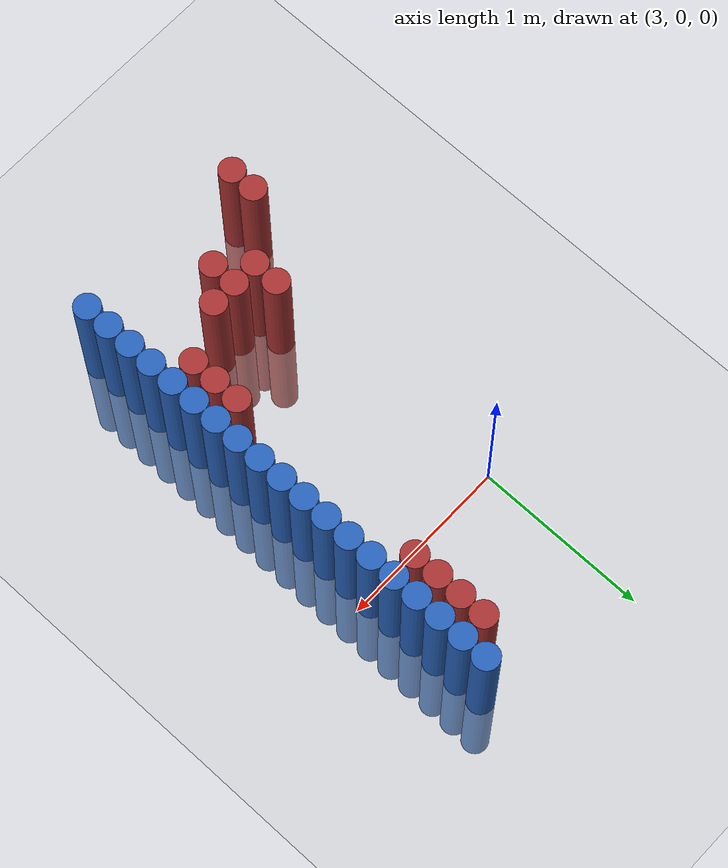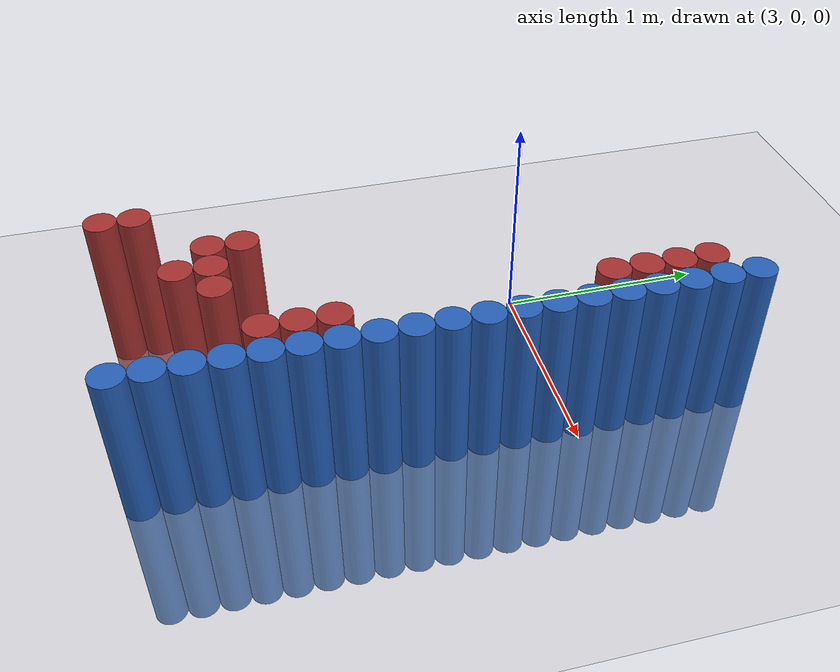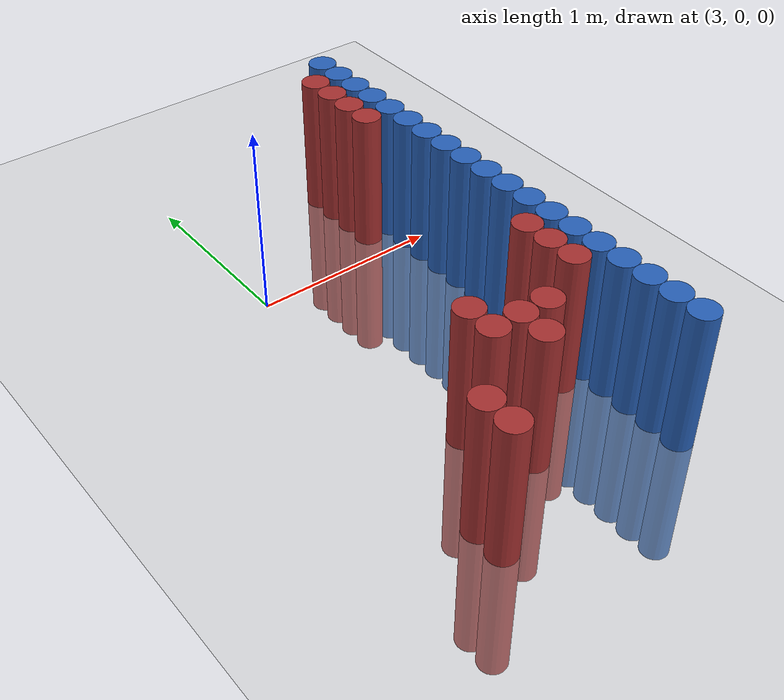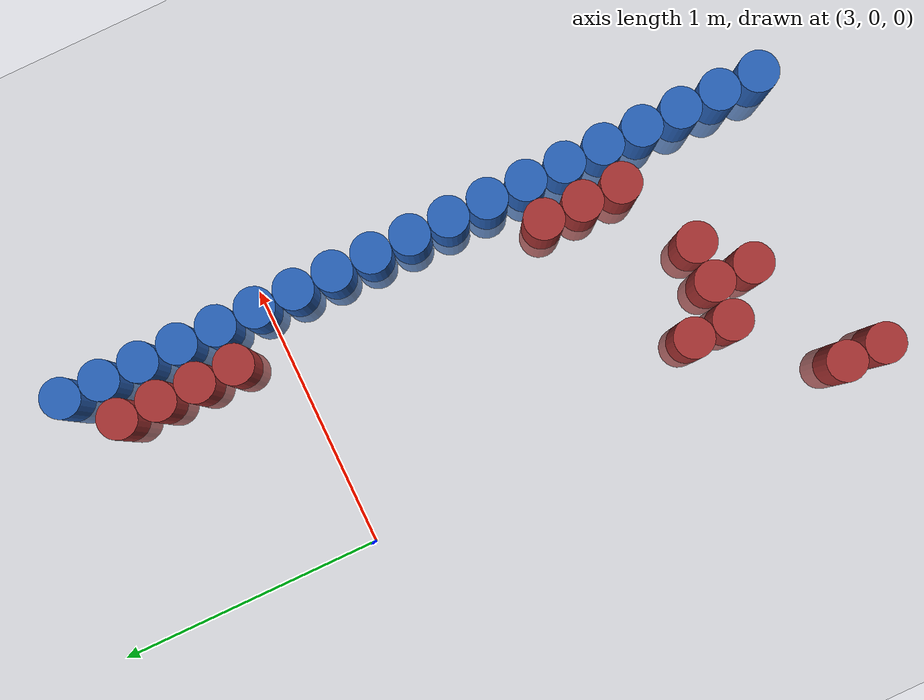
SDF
<sdf version="1.6">
 <world name="default">
  <model name="ground_plane">
   <static>1</static>
   <link name="link">
    <collision name="collision">
     <geometry><plane><normal>0 0 1</normal><size>100 100</size></plane></geometry>
     <surface><friction><ode><mu>100</mu><mu2>50</mu2></ode></friction></surface>
    </collision>
    <visual name="visual">
     <cast_shadows>0</cast_shadows>
     <geometry><plane><normal>0 0 1</normal><size>100 100</size></plane></geometry>
     <material>
      <script><uri>file://media/materials/scripts/gazebo.material</uri><name>Gazebo/Grey</name></script>
     </material>
    </visual>
   </link>
  </model>
  <model name="unit_cylinder_88">
   <static>1</static>
   <pose>3.925000 -1.925000 0.000000 0.000000 0.000000 0.000000</pose>
   <link name="link">
    <inertial>
     <mass>1</mass>
     <inertia><ixx>0.145833</ixx><ixy>0</ixy><ixz>0</ixz><iyy>0.145833</iyy><iyz>0</iyz><izz>0.125</izz></inertia>
    </inertial>
    <collision name="collision">
     <geometry><cylinder><radius>0.075000</radius><length>1.5</length></cylinder></geometry>
    </collision>
    <visual name="visual">
     <geometry><cylinder><radius>0.075000</radius><length>1.5</length></cylinder></geometry>
     <material>
      <ambient>0.152000 0.379000 0.720000 1</ambient>
      <diffuse>0.152000 0.379000 0.720000 1</diffuse>
     </material>
     <material>
      <script><name>Gazebo/Grey</name><uri>file://media/materials/scripts/gazebo.material</uri></script>
     </material>
    </visual>
   </link>
  </model>
  <model name="unit_cylinder_90">
   <static>1</static>
   <pose>3.925000 -1.775000 0.000000 0.000000 0.000000 0.000000</pose>
   <link name="link">
    <inertial>
     <mass>1</mass>
     <inertia><ixx>0.145833</ixx><ixy>0</ixy><ixz>0</ixz><iyy>0.145833</iyy><iyz>0</iyz><izz>0.125</izz></inertia>
    </inertial>
    <collision name="collision">
     <geometry><cylinder><radius>0.075000</radius><length>1.5</length></cylinder></geometry>
    </collision>
    <visual name="visual">
     <geometry><cylinder><radius>0.075000</radius><length>1.5</length></cylinder></geometry>
     <material>
      <ambient>0.152000 0.379000 0.720000 1</ambient>
      <diffuse>0.152000 0.379000 0.720000 1</diffuse>
     </material>
     <material>
      <script><name>Gazebo/Grey</name><uri>file://media/materials/scripts/gazebo.material</uri></script>
     </material>
    </visual>
   </link>
  </model>
  <model name="unit_cylinder_92">
   <static>1</static>
   <pose>3.925000 -1.625000 0.000000 0.000000 0.000000 0.000000</pose>
   <link name="link">
    <inertial>
     <mass>1</mass>
     <inertia><ixx>0.145833</ixx><ixy>0</ixy><ixz>0</ixz><iyy>0.145833</iyy><iyz>0</iyz><izz>0.125</izz></inertia>
    </inertial>
    <collision name="collision">
     <geometry><cylinder><radius>0.075000</radius><length>1.5</length></cylinder></geometry>
    </collision>
    <visual name="visual">
     <geometry><cylinder><radius>0.075000</radius><length>1.5</length></cylinder></geometry>
     <material>
      <ambient>0.152000 0.379000 0.720000 1</ambient>
      <diffuse>0.152000 0.379000 0.720000 1</diffuse>
     </material>
     <material>
      <script><name>Gazebo/Grey</name><uri>file://media/materials/scripts/gazebo.material</uri></script>
     </material>
    </visual>
   </link>
  </model>
  <model name="unit_cylinder_94">
   <static>1</static>
   <pose>3.925000 -1.475000 0.000000 0.000000 0.000000 0.000000</pose>
   <link name="link">
    <inertial>
     <mass>1</mass>
     <inertia><ixx>0.145833</ixx><ixy>0</ixy><ixz>0</ixz><iyy>0.145833</iyy><iyz>0</iyz><izz>0.125</izz></inertia>
    </inertial>
    <collision name="collision">
     <geometry><cylinder><radius>0.075000</radius><length>1.5</length></cylinder></geometry>
    </collision>
    <visual name="visual">
     <geometry><cylinder><radius>0.075000</radius><length>1.5</length></cylinder></geometry>
     <material>
      <ambient>0.152000 0.379000 0.720000 1</ambient>
      <diffuse>0.152000 0.379000 0.720000 1</diffuse>
     </material>
     <material>
      <script><name>Gazebo/Grey</name><uri>file://media/materials/scripts/gazebo.material</uri></script>
     </material>
    </visual>
   </link>
  </model>
  <model name="unit_cylinder_96">
   <static>1</static>
   <pose>3.925000 -1.325000 0.000000 0.000000 0.000000 0.000000</pose>
   <link name="link">
    <inertial>
     <mass>1</mass>
     <inertia><ixx>0.145833</ixx><ixy>0</ixy><ixz>0</ixz><iyy>0.145833</iyy><iyz>0</iyz><izz>0.125</izz></inertia>
    </inertial>
    <collision name="collision">
     <geometry><cylinder><radius>0.075000</radius><length>1.5</length></cylinder></geometry>
    </collision>
    <visual name="visual">
     <geometry><cylinder><radius>0.075000</radius><length>1.5</length></cylinder></geometry>
     <material>
      <ambient>0.152000 0.379000 0.720000 1</ambient>
      <diffuse>0.152000 0.379000 0.720000 1</diffuse>
     </material>
     <material>
      <script><name>Gazebo/Grey</name><uri>file://media/materials/scripts/gazebo.material</uri></script>
     </material>
    </visual>
   </link>
  </model>
  <model name="unit_cylinder_98">
   <static>1</static>
   <pose>3.925000 -1.175000 0.000000 0.000000 0.000000 0.000000</pose>
   <link name="link">
    <inertial>
     <mass>1</mass>
     <inertia><ixx>0.145833</ixx><ixy>0</ixy><ixz>0</ixz><iyy>0.145833</iyy><iyz>0</iyz><izz>0.125</izz></inertia>
    </inertial>
    <collision name="collision">
     <geometry><cylinder><radius>0.075000</radius><length>1.5</length></cylinder></geometry>
    </collision>
    <visual name="visual">
     <geometry><cylinder><radius>0.075000</radius><length>1.5</length></cylinder></geometry>
     <material>
      <ambient>0.152000 0.379000 0.720000 1</ambient>
      <diffuse>0.152000 0.379000 0.720000 1</diffuse>
     </material>
     <material>
      <script><name>Gazebo/Grey</name><uri>file://media/materials/scripts/gazebo.material</uri></script>
     </material>
    </visual>
   </link>
  </model>
  <model name="unit_cylinder_100">
   <static>1</static>
   <pose>3.925000 -1.025000 0.000000 0.000000 0.000000 0.000000</pose>
   <link name="link">
    <inertial>
     <mass>1</mass>
     <inertia><ixx>0.145833</ixx><ixy>0</ixy><ixz>0</ixz><iyy>0.145833</iyy><iyz>0</iyz><izz>0.125</izz></inertia>
    </inertial>
    <collision name="collision">
     <geometry><cylinder><radius>0.075000</radius><length>1.5</length></cylinder></geometry>
    </collision>
    <visual name="visual">
     <geometry><cylinder><radius>0.075000</radius><length>1.5</length></cylinder></geometry>
     <material>
      <ambient>0.152000 0.379000 0.720000 1</ambient>
      <diffuse>0.152000 0.379000 0.720000 1</diffuse>
     </material>
     <material>
      <script><name>Gazebo/Grey</name><uri>file://media/materials/scripts/gazebo.material</uri></script>
     </material>
    </visual>
   </link>
  </model>
  <model name="unit_cylinder_102">
   <static>1</static>
   <pose>3.925000 -0.875000 0.000000 0.000000 0.000000 0.000000</pose>
   <link name="link">
    <inertial>
     <mass>1</mass>
     <inertia><ixx>0.145833</ixx><ixy>0</ixy><ixz>0</ixz><iyy>0.145833</iyy><iyz>0</iyz><izz>0.125</izz></inertia>
    </inertial>
    <collision name="collision">
     <geometry><cylinder><radius>0.075000</radius><length>1.5</length></cylinder></geometry>
    </collision>
    <visual name="visual">
     <geometry><cylinder><radius>0.075000</radius><length>1.5</length></cylinder></geometry>
     <material>
      <ambient>0.152000 0.379000 0.720000 1</ambient>
      <diffuse>0.152000 0.379000 0.720000 1</diffuse>
     </material>
     <material>
      <script><name>Gazebo/Grey</name><uri>file://media/materials/scripts/gazebo.material</uri></script>
     </material>
    </visual>
   </link>
  </model>
  <model name="unit_cylinder_104">
   <static>1</static>
   <pose>3.925000 -0.725000 0.000000 0.000000 0.000000 0.000000</pose>
   <link name="link">
    <inertial>
     <mass>1</mass>
     <inertia><ixx>0.145833</ixx><ixy>0</ixy><ixz>0</ixz><iyy>0.145833</iyy><iyz>0</iyz><izz>0.125</izz></inertia>
    </inertial>
    <collision name="collision">
     <geometry><cylinder><radius>0.075000</radius><length>1.5</length></cylinder></geometry>
    </collision>
    <visual name="visual">
     <geometry><cylinder><radius>0.075000</radius><length>1.5</length></cylinder></geometry>
     <material>
      <ambient>0.152000 0.379000 0.720000 1</ambient>
      <diffuse>0.152000 0.379000 0.720000 1</diffuse>
     </material>
     <material>
      <script><name>Gazebo/Grey</name><uri>file://media/materials/scripts/gazebo.material</uri></script>
     </material>
    </visual>
   </link>
  </model>
  <model name="unit_cylinder_106">
   <static>1</static>
   <pose>3.925000 -0.575000 0.000000 0.000000 0.000000 0.000000</pose>
   <link name="link">
    <inertial>
     <mass>1</mass>
     <inertia><ixx>0.145833</ixx><ixy>0</ixy><ixz>0</ixz><iyy>0.145833</iyy><iyz>0</iyz><izz>0.125</izz></inertia>
    </inertial>
    <collision name="collision">
     <geometry><cylinder><radius>0.075000</radius><length>1.5</length></cylinder></geometry>
    </collision>
    <visual name="visual">
     <geometry><cylinder><radius>0.075000</radius><length>1.5</length></cylinder></geometry>
     <material>
      <ambient>0.152000 0.379000 0.720000 1</ambient>
      <diffuse>0.152000 0.379000 0.720000 1</diffuse>
     </material>
     <material>
      <script><name>Gazebo/Grey</name><uri>file://media/materials/scripts/gazebo.material</uri></script>
     </material>
    </visual>
   </link>
  </model>
  <model name="unit_cylinder_108">
   <static>1</static>
   <pose>3.925000 -0.425000 0.000000 0.000000 0.000000 0.000000</pose>
   <link name="link">
    <inertial>
     <mass>1</mass>
     <inertia><ixx>0.145833</ixx><ixy>0</ixy><ixz>0</ixz><iyy>0.145833</iyy><iyz>0</iyz><izz>0.125</izz></inertia>
    </inertial>
    <collision name="collision">
     <geometry><cylinder><radius>0.075000</radius><length>1.5</length></cylinder></geometry>
    </collision>
    <visual name="visual">
     <geometry><cylinder><radius>0.075000</radius><length>1.5</length></cylinder></geometry>
     <material>
      <ambient>0.152000 0.379000 0.720000 1</ambient>
      <diffuse>0.152000 0.379000 0.720000 1</diffuse>
     </material>
     <material>
      <script><name>Gazebo/Grey</name><uri>file://media/materials/scripts/gazebo.material</uri></script>
     </material>
    </visual>
   </link>
  </model>
  <model name="unit_cylinder_110">
   <static>1</static>
   <pose>3.925000 -0.275000 0.000000 0.000000 0.000000 0.000000</pose>
   <link name="link">
    <inertial>
     <mass>1</mass>
     <inertia><ixx>0.145833</ixx><ixy>0</ixy><ixz>0</ixz><iyy>0.145833</iyy><iyz>0</iyz><izz>0.125</izz></inertia>
    </inertial>
    <collision name="collision">
     <geometry><cylinder><radius>0.075000</radius><length>1.5</length></cylinder></geometry>
    </collision>
    <visual name="visual">
     <geometry><cylinder><radius>0.075000</radius><length>1.5</length></cylinder></geometry>
     <material>
      <ambient>0.152000 0.379000 0.720000 1</ambient>
      <diffuse>0.152000 0.379000 0.720000 1</diffuse>
     </material>
     <material>
      <script><name>Gazebo/Grey</name><uri>file://media/materials/scripts/gazebo.material</uri></script>
     </material>
    </visual>
   </link>
  </model>
  <model name="unit_cylinder_112">
   <static>1</static>
   <pose>3.925000 -0.125000 0.000000 0.000000 0.000000 0.000000</pose>
   <link name="link">
    <inertial>
     <mass>1</mass>
     <inertia><ixx>0.145833</ixx><ixy>0</ixy><ixz>0</ixz><iyy>0.145833</iyy><iyz>0</iyz><izz>0.125</izz></inertia>
    </inertial>
    <collision name="collision">
     <geometry><cylinder><radius>0.075000</radius><length>1.5</length></cylinder></geometry>
    </collision>
    <visual name="visual">
     <geometry><cylinder><radius>0.075000</radius><length>1.5</length></cylinder></geometry>
     <material>
      <ambient>0.152000 0.379000 0.720000 1</ambient>
      <diffuse>0.152000 0.379000 0.720000 1</diffuse>
     </material>
     <material>
      <script><name>Gazebo/Grey</name><uri>file://media/materials/scripts/gazebo.material</uri></script>
     </material>
    </visual>
   </link>
  </model>
  <model name="unit_cylinder_114">
   <static>1</static>
   <pose>3.925000 0.025000 0.000000 0.000000 0.000000 0.000000</pose>
   <link name="link">
    <inertial>
     <mass>1</mass>
     <inertia><ixx>0.145833</ixx><ixy>0</ixy><ixz>0</ixz><iyy>0.145833</iyy><iyz>0</iyz><izz>0.125</izz></inertia>
    </inertial>
    <collision name="collision">
     <geometry><cylinder><radius>0.075000</radius><length>1.5</length></cylinder></geometry>
    </collision>
    <visual name="visual">
     <geometry><cylinder><radius>0.075000</radius><length>1.5</length></cylinder></geometry>
     <material>
      <ambient>0.152000 0.379000 0.720000 1</ambient>
      <diffuse>0.152000 0.379000 0.720000 1</diffuse>
     </material>
     <material>
      <script><name>Gazebo/Grey</name><uri>file://media/materials/scripts/gazebo.material</uri></script>
     </material>
    </visual>
   </link>
  </model>
  <model name="unit_cylinder_116">
   <static>1</static>
   <pose>3.925000 0.175000 0.000000 0.000000 0.000000 0.000000</pose>
   <link name="link">
    <inertial>
     <mass>1</mass>
     <inertia><ixx>0.145833</ixx><ixy>0</ixy><ixz>0</ixz><iyy>0.145833</iyy><iyz>0</iyz><izz>0.125</izz></inertia>
    </inertial>
    <collision name="collision">
     <geometry><cylinder><radius>0.075000</radius><length>1.5</length></cylinder></geometry>
    </collision>
    <visual name="visual">
     <geometry><cylinder><radius>0.075000</radius><length>1.5</length></cylinder></geometry>
     <material>
      <ambient>0.152000 0.379000 0.720000 1</ambient>
      <diffuse>0.152000 0.379000 0.720000 1</diffuse>
     </material>
     <material>
      <script><name>Gazebo/Grey</name><uri>file://media/materials/scripts/gazebo.material</uri></script>
     </material>
    </visual>
   </link>
  </model>
  <model name="unit_cylinder_118">
   <static>1</static>
   <pose>3.925000 0.325000 0.000000 0.000000 0.000000 0.000000</pose>
   <link name="link">
    <inertial>
     <mass>1</mass>
     <inertia><ixx>0.145833</ixx><ixy>0</ixy><ixz>0</ixz><iyy>0.145833</iyy><iyz>0</iyz><izz>0.125</izz></inertia>
    </inertial>
    <collision name="collision">
     <geometry><cylinder><radius>0.075000</radius><length>1.5</length></cylinder></geometry>
    </collision>
    <visual name="visual">
     <geometry><cylinder><radius>0.075000</radius><length>1.5</length></cylinder></geometry>
     <material>
      <ambient>0.152000 0.379000 0.720000 1</ambient>
      <diffuse>0.152000 0.379000 0.720000 1</diffuse>
     </material>
     <material>
      <script><name>Gazebo/Grey</name><uri>file://media/materials/scripts/gazebo.material</uri></script>
     </material>
    </visual>
   </link>
  </model>
  <model name="unit_cylinder_120">
   <static>1</static>
   <pose>3.925000 0.475000 0.000000 0.000000 0.000000 0.000000</pose>
   <link name="link">
    <inertial>
     <mass>1</mass>
     <inertia><ixx>0.145833</ixx><ixy>0</ixy><ixz>0</ixz><iyy>0.145833</iyy><iyz>0</iyz><izz>0.125</izz></inertia>
    </inertial>
    <collision name="collision">
     <geometry><cylinder><radius>0.075000</radius><length>1.5</length></cylinder></geometry>
    </collision>
    <visual name="visual">
     <geometry><cylinder><radius>0.075000</radius><length>1.5</length></cylinder></geometry>
     <material>
      <ambient>0.152000 0.379000 0.720000 1</ambient>
      <diffuse>0.152000 0.379000 0.720000 1</diffuse>
     </material>
     <material>
      <script><name>Gazebo/Grey</name><uri>file://media/materials/scripts/gazebo.material</uri></script>
     </material>
    </visual>
   </link>
  </model>
  <model name="unit_cylinder_122">
   <static>1</static>
   <pose>3.925000 0.625000 0.000000 0.000000 0.000000 0.000000</pose>
   <link name="link">
    <inertial>
     <mass>1</mass>
     <inertia><ixx>0.145833</ixx><ixy>0</ixy><ixz>0</ixz><iyy>0.145833</iyy><iyz>0</iyz><izz>0.125</izz></inertia>
    </inertial>
    <collision name="collision">
     <geometry><cylinder><radius>0.075000</radius><length>1.5</length></cylinder></geometry>
    </collision>
    <visual name="visual">
     <geometry><cylinder><radius>0.075000</radius><length>1.5</length></cylinder></geometry>
     <material>
      <ambient>0.152000 0.379000 0.720000 1</ambient>
      <diffuse>0.152000 0.379000 0.720000 1</diffuse>
     </material>
     <material>
      <script><name>Gazebo/Grey</name><uri>file://media/materials/scripts/gazebo.material</uri></script>
     </material>
    </visual>
   </link>
  </model>
  <model name="unit_cylinder_124">
   <static>1</static>
   <pose>3.925000 0.775000 0.000000 0.000000 0.000000 0.000000</pose>
   <link name="link">
    <inertial>
     <mass>1</mass>
     <inertia><ixx>0.145833</ixx><ixy>0</ixy><ixz>0</ixz><iyy>0.145833</iyy><iyz>0</iyz><izz>0.125</izz></inertia>
    </inertial>
    <collision name="collision">
     <geometry><cylinder><radius>0.075000</radius><length>1.5</length></cylinder></geometry>
    </collision>
    <visual name="visual">
     <geometry><cylinder><radius>0.075000</radius><length>1.5</length></cylinder></geometry>
     <material>
      <ambient>0.152000 0.379000 0.720000 1</ambient>
      <diffuse>0.152000 0.379000 0.720000 1</diffuse>
     </material>
     <material>
      <script><name>Gazebo/Grey</name><uri>file://media/materials/scripts/gazebo.material</uri></script>
     </material>
    </visual>
   </link>
  </model>
  <model name="unit_cylinder_501">
   <static>1</static>
   <pose>2.875000 -1.925000 0.000000 0.000000 0.000000 0.000000</pose>
   <link name="link">
    <inertial>
     <mass>1</mass>
     <inertia><ixx>0.145833</ixx><ixy>0</ixy><ixz>0</ixz><iyy>0.145833</iyy><iyz>0</iyz><izz>0.125</izz></inertia>
    </inertial>
    <collision name="collision">
     <geometry><cylinder><radius>0.075000</radius><length>1.5</length></cylinder></geometry>
    </collision>
    <visual name="visual">
     <geometry><cylinder><radius>0.075000</radius><length>1.5</length></cylinder></geometry>
     <material>
      <ambient>0.648000 0.192000 0.192000 1</ambient>
      <diffuse>0.648000 0.192000 0.192000 1</diffuse>
     </material>
     <material>
      <script><name>Gazebo/Grey</name><uri>file://media/materials/scripts/gazebo.material</uri></script>
     </material>
    </visual>
   </link>
  </model>
  <model name="unit_cylinder_502">
   <static>1</static>
   <pose>2.875000 -1.775000 0.000000 0.000000 0.000000 0.000000</pose>
   <link name="link">
    <inertial>
     <mass>1</mass>
     <inertia><ixx>0.145833</ixx><ixy>0</ixy><ixz>0</ixz><iyy>0.145833</iyy><iyz>0</iyz><izz>0.125</izz></inertia>
    </inertial>
    <collision name="collision">
     <geometry><cylinder><radius>0.075000</radius><length>1.5</length></cylinder></geometry>
    </collision>
    <visual name="visual">
     <geometry><cylinder><radius>0.075000</radius><length>1.5</length></cylinder></geometry>
     <material>
      <ambient>0.648000 0.192000 0.192000 1</ambient>
      <diffuse>0.648000 0.192000 0.192000 1</diffuse>
     </material>
     <material>
      <script><name>Gazebo/Grey</name><uri>file://media/materials/scripts/gazebo.material</uri></script>
     </material>
    </visual>
   </link>
  </model>
  <model name="unit_cylinder_505">
   <static>1</static>
   <pose>3.175000 -1.475000 0.000000 0.000000 0.000000 0.000000</pose>
   <link name="link">
    <inertial>
     <mass>1</mass>
     <inertia><ixx>0.145833</ixx><ixy>0</ixy><ixz>0</ixz><iyy>0.145833</iyy><iyz>0</iyz><izz>0.125</izz></inertia>
    </inertial>
    <collision name="collision">
     <geometry><cylinder><radius>0.075000</radius><length>1.5</length></cylinder></geometry>
    </collision>
    <visual name="visual">
     <geometry><cylinder><radius>0.075000</radius><length>1.5</length></cylinder></geometry>
     <material>
      <ambient>0.648000 0.192000 0.192000 1</ambient>
      <diffuse>0.648000 0.192000 0.192000 1</diffuse>
     </material>
     <material>
      <script><name>Gazebo/Grey</name><uri>file://media/materials/scripts/gazebo.material</uri></script>
     </material>
    </visual>
   </link>
  </model>
  <model name="unit_cylinder_506">
   <static>1</static>
   <pose>3.175000 -1.325000 0.000000 0.000000 0.000000 0.000000</pose>
   <link name="link">
    <inertial>
     <mass>1</mass>
     <inertia><ixx>0.145833</ixx><ixy>0</ixy><ixz>0</ixz><iyy>0.145833</iyy><iyz>0</iyz><izz>0.125</izz></inertia>
    </inertial>
    <collision name="collision">
     <geometry><cylinder><radius>0.075000</radius><length>1.5</length></cylinder></geometry>
    </collision>
    <visual name="visual">
     <geometry><cylinder><radius>0.075000</radius><length>1.5</length></cylinder></geometry>
     <material>
      <ambient>0.648000 0.192000 0.192000 1</ambient>
      <diffuse>0.648000 0.192000 0.192000 1</diffuse>
     </material>
     <material>
      <script><name>Gazebo/Grey</name><uri>file://media/materials/scripts/gazebo.material</uri></script>
     </material>
    </visual>
   </link>
  </model>
  <model name="unit_cylinder_510">
   <static>1</static>
   <pose>3.325000 -1.625000 0.000000 0.000000 0.000000 0.000000</pose>
   <link name="link">
    <inertial>
     <mass>1</mass>
     <inertia><ixx>0.145833</ixx><ixy>0</ixy><ixz>0</ixz><iyy>0.145833</iyy><iyz>0</iyz><izz>0.125</izz></inertia>
    </inertial>
    <collision name="collision">
     <geometry><cylinder><radius>0.075000</radius><length>1.5</length></cylinder></geometry>
    </collision>
    <visual name="visual">
     <geometry><cylinder><radius>0.075000</radius><length>1.5</length></cylinder></geometry>
     <material>
      <ambient>0.648000 0.192000 0.192000 1</ambient>
      <diffuse>0.648000 0.192000 0.192000 1</diffuse>
     </material>
     <material>
      <script><name>Gazebo/Grey</name><uri>file://media/materials/scripts/gazebo.material</uri></script>
     </material>
    </visual>
   </link>
  </model>
  <model name="unit_cylinder_511">
   <static>1</static>
   <pose>3.325000 -1.475000 0.000000 0.000000 0.000000 0.000000</pose>
   <link name="link">
    <inertial>
     <mass>1</mass>
     <inertia><ixx>0.145833</ixx><ixy>0</ixy><ixz>0</ixz><iyy>0.145833</iyy><iyz>0</iyz><izz>0.125</izz></inertia>
    </inertial>
    <collision name="collision">
     <geometry><cylinder><radius>0.075000</radius><length>1.5</length></cylinder></geometry>
    </collision>
    <visual name="visual">
     <geometry><cylinder><radius>0.075000</radius><length>1.5</length></cylinder></geometry>
     <material>
      <ambient>0.648000 0.192000 0.192000 1</ambient>
      <diffuse>0.648000 0.192000 0.192000 1</diffuse>
     </material>
     <material>
      <script><name>Gazebo/Grey</name><uri>file://media/materials/scripts/gazebo.material</uri></script>
     </material>
    </visual>
   </link>
  </model>
  <model name="unit_cylinder_515">
   <static>1</static>
   <pose>3.475000 -1.475000 0.000000 0.000000 0.000000 0.000000</pose>
   <link name="link">
    <inertial>
     <mass>1</mass>
     <inertia><ixx>0.145833</ixx><ixy>0</ixy><ixz>0</ixz><iyy>0.145833</iyy><iyz>0</iyz><izz>0.125</izz></inertia>
    </inertial>
    <collision name="collision">
     <geometry><cylinder><radius>0.075000</radius><length>1.5</length></cylinder></geometry>
    </collision>
    <visual name="visual">
     <geometry><cylinder><radius>0.075000</radius><length>1.5</length></cylinder></geometry>
     <material>
      <ambient>0.648000 0.192000 0.192000 1</ambient>
      <diffuse>0.648000 0.192000 0.192000 1</diffuse>
     </material>
     <material>
      <script><name>Gazebo/Grey</name><uri>file://media/materials/scripts/gazebo.material</uri></script>
     </material>
    </visual>
   </link>
  </model>
  <model name="unit_cylinder_525">
   <static>1</static>
   <pose>3.775000 -1.325000 0.000000 0.000000 0.000000 0.000000</pose>
   <link name="link">
    <inertial>
     <mass>1</mass>
     <inertia><ixx>0.145833</ixx><ixy>0</ixy><ixz>0</ixz><iyy>0.145833</iyy><iyz>0</iyz><izz>0.125</izz></inertia>
    </inertial>
    <collision name="collision">
     <geometry><cylinder><radius>0.075000</radius><length>1.5</length></cylinder></geometry>
    </collision>
    <visual name="visual">
     <geometry><cylinder><radius>0.075000</radius><length>1.5</length></cylinder></geometry>
     <material>
      <ambient>0.648000 0.192000 0.192000 1</ambient>
      <diffuse>0.648000 0.192000 0.192000 1</diffuse>
     </material>
     <material>
      <script><name>Gazebo/Grey</name><uri>file://media/materials/scripts/gazebo.material</uri></script>
     </material>
    </visual>
   </link>
  </model>
  <model name="unit_cylinder_526">
   <static>1</static>
   <pose>3.775000 -1.175000 0.000000 0.000000 0.000000 0.000000</pose>
   <link name="link">
    <inertial>
     <mass>1</mass>
     <inertia><ixx>0.145833</ixx><ixy>0</ixy><ixz>0</ixz><iyy>0.145833</iyy><iyz>0</iyz><izz>0.125</izz></inertia>
    </inertial>
    <collision name="collision">
     <geometry><cylinder><radius>0.075000</radius><length>1.5</length></cylinder></geometry>
    </collision>
    <visual name="visual">
     <geometry><cylinder><radius>0.075000</radius><length>1.5</length></cylinder></geometry>
     <material>
      <ambient>0.648000 0.192000 0.192000 1</ambient>
      <diffuse>0.648000 0.192000 0.192000 1</diffuse>
     </material>
     <material>
      <script><name>Gazebo/Grey</name><uri>file://media/materials/scripts/gazebo.material</uri></script>
     </material>
    </visual>
   </link>
  </model>
  <model name="unit_cylinder_527">
   <static>1</static>
   <pose>3.775000 -1.025000 0.000000 0.000000 0.000000 0.000000</pose>
   <link name="link">
    <inertial>
     <mass>1</mass>
     <inertia><ixx>0.145833</ixx><ixy>0</ixy><ixz>0</ixz><iyy>0.145833</iyy><iyz>0</iyz><izz>0.125</izz></inertia>
    </inertial>
    <collision name="collision">
     <geometry><cylinder><radius>0.075000</radius><length>1.5</length></cylinder></geometry>
    </collision>
    <visual name="visual">
     <geometry><cylinder><radius>0.075000</radius><length>1.5</length></cylinder></geometry>
     <material>
      <ambient>0.648000 0.192000 0.192000 1</ambient>
      <diffuse>0.648000 0.192000 0.192000 1</diffuse>
     </material>
     <material>
      <script><name>Gazebo/Grey</name><uri>file://media/materials/scripts/gazebo.material</uri></script>
     </material>
    </visual>
   </link>
  </model>
  <model name="unit_cylinder_528">
   <static>1</static>
   <pose>3.775000 0.175000 0.000000 0.000000 0.000000 0.000000</pose>
   <link name="link">
    <inertial>
     <mass>1</mass>
     <inertia><ixx>0.145833</ixx><ixy>0</ixy><ixz>0</ixz><iyy>0.145833</iyy><iyz>0</iyz><izz>0.125</izz></inertia>
    </inertial>
    <collision name="collision">
     <geometry><cylinder><radius>0.075000</radius><length>1.5</length></cylinder></geometry>
    </collision>
    <visual name="visual">
     <geometry><cylinder><radius>0.075000</radius><length>1.5</length></cylinder></geometry>
     <material>
      <ambient>0.648000 0.192000 0.192000 1</ambient>
      <diffuse>0.648000 0.192000 0.192000 1</diffuse>
     </material>
     <material>
      <script><name>Gazebo/Grey</name><uri>file://media/materials/scripts/gazebo.material</uri></script>
     </material>
    </visual>
   </link>
  </model>
  <model name="unit_cylinder_529">
   <static>1</static>
   <pose>3.775000 0.325000 0.000000 0.000000 0.000000 0.000000</pose>
   <link name="link">
    <inertial>
     <mass>1</mass>
     <inertia><ixx>0.145833</ixx><ixy>0</ixy><ixz>0</ixz><iyy>0.145833</iyy><iyz>0</iyz><izz>0.125</izz></inertia>
    </inertial>
    <collision name="collision">
     <geometry><cylinder><radius>0.075000</radius><length>1.5</length></cylinder></geometry>
    </collision>
    <visual name="visual">
     <geometry><cylinder><radius>0.075000</radius><length>1.5</length></cylinder></geometry>
     <material>
      <ambient>0.648000 0.192000 0.192000 1</ambient>
      <diffuse>0.648000 0.192000 0.192000 1</diffuse>
     </material>
     <material>
      <script><name>Gazebo/Grey</name><uri>file://media/materials/scripts/gazebo.material</uri></script>
     </material>
    </visual>
   </link>
  </model>
  <model name="unit_cylinder_530">
   <static>1</static>
   <pose>3.775000 0.475000 0.000000 0.000000 0.000000 0.000000</pose>
   <link name="link">
    <inertial>
     <mass>1</mass>
     <inertia><ixx>0.145833</ixx><ixy>0</ixy><ixz>0</ixz><iyy>0.145833</iyy><iyz>0</iyz><izz>0.125</izz></inertia>
    </inertial>
    <collision name="collision">
     <geometry><cylinder><radius>0.075000</radius><length>1.5</length></cylinder></geometry>
    </collision>
    <visual name="visual">
     <geometry><cylinder><radius>0.075000</radius><length>1.5</length></cylinder></geometry>
     <material>
      <ambient>0.648000 0.192000 0.192000 1</ambient>
      <diffuse>0.648000 0.192000 0.192000 1</diffuse>
     </material>
     <material>
      <script><name>Gazebo/Grey</name><uri>file://media/materials/scripts/gazebo.material</uri></script>
     </material>
    </visual>
   </link>
  </model>
  <model name="unit_cylinder_531">
   <static>1</static>
   <pose>3.775000 0.625000 0.000000 0.000000 0.000000 0.000000</pose>
   <link name="link">
    <inertial>
     <mass>1</mass>
     <inertia><ixx>0.145833</ixx><ixy>0</ixy><ixz>0</ixz><iyy>0.145833</iyy><iyz>0</iyz><izz>0.125</izz></inertia>
    </inertial>
    <collision name="collision">
     <geometry><cylinder><radius>0.075000</radius><length>1.5</length></cylinder></geometry>
    </collision>
    <visual name="visual">
     <geometry><cylinder><radius>0.075000</radius><length>1.5</length></cylinder></geometry>
     <material>
      <ambient>0.648000 0.192000 0.192000 1</ambient>
      <diffuse>0.648000 0.192000 0.192000 1</diffuse>
     </material>
     <material>
      <script><name>Gazebo/Grey</name><uri>file://media/materials/scripts/gazebo.material</uri></script>
     </material>
    </visual>
   </link>
  </model>
  <model name="unit_cylinder_554">
   <static>1</static>
   <pose>3.925000 -1.925000 0.000000 0.000000 0.000000 0.000000</pose>
   <link name="link">
    <inertial>
     <mass>1</mass>
     <inertia><ixx>0.145833</ixx><ixy>0</ixy><ixz>0</ixz><iyy>0.145833</iyy><iyz>0</iyz><izz>0.125</izz></inertia>
    </inertial>
    <collision name="collision">
     <geometry><cylinder><radius>0.075000</radius><length>1.5</length></cylinder></geometry>
    </collision>
    <visual name="visual">
     <geometry><cylinder><radius>0.075000</radius><length>1.5</length></cylinder></geometry>
     <material>
      <ambient>0.152000 0.379000 0.720000 1</ambient>
      <diffuse>0.152000 0.379000 0.720000 1</diffuse>
     </material>
     <material>
      <script><name>Gazebo/Grey</name><uri>file://media/materials/scripts/gazebo.material</uri></script>
     </material>
    </visual>
   </link>
  </model>
  <model name="unit_cylinder_555">
   <static>1</static>
   <pose>3.925000 -1.775000 0.000000 0.000000 0.000000 0.000000</pose>
   <link name="link">
    <inertial>
     <mass>1</mass>
     <inertia><ixx>0.145833</ixx><ixy>0</ixy><ixz>0</ixz><iyy>0.145833</iyy><iyz>0</iyz><izz>0.125</izz></inertia>
    </inertial>
    <collision name="collision">
     <geometry><cylinder><radius>0.075000</radius><length>1.5</length></cylinder></geometry>
    </collision>
    <visual name="visual">
     <geometry><cylinder><radius>0.075000</radius><length>1.5</length></cylinder></geometry>
     <material>
      <ambient>0.152000 0.379000 0.720000 1</ambient>
      <diffuse>0.152000 0.379000 0.720000 1</diffuse>
     </material>
     <material>
      <script><name>Gazebo/Grey</name><uri>file://media/materials/scripts/gazebo.material</uri></script>
     </material>
    </visual>
   </link>
  </model>
  <model name="unit_cylinder_556">
   <static>1</static>
   <pose>3.925000 -1.625000 0.000000 0.000000 0.000000 0.000000</pose>
   <link name="link">
    <inertial>
     <mass>1</mass>
     <inertia><ixx>0.145833</ixx><ixy>0</ixy><ixz>0</ixz><iyy>0.145833</iyy><iyz>0</iyz><izz>0.125</izz></inertia>
    </inertial>
    <collision name="collision">
     <geometry><cylinder><radius>0.075000</radius><length>1.5</length></cylinder></geometry>
    </collision>
    <visual name="visual">
     <geometry><cylinder><radius>0.075000</radius><length>1.5</length></cylinder></geometry>
     <material>
      <ambient>0.152000 0.379000 0.720000 1</ambient>
      <diffuse>0.152000 0.379000 0.720000 1</diffuse>
     </material>
     <material>
      <script><name>Gazebo/Grey</name><uri>file://media/materials/scripts/gazebo.material</uri></script>
     </material>
    </visual>
   </link>
  </model>
  <model name="unit_cylinder_557">
   <static>1</static>
   <pose>3.925000 -1.475000 0.000000 0.000000 0.000000 0.000000</pose>
   <link name="link">
    <inertial>
     <mass>1</mass>
     <inertia><ixx>0.145833</ixx><ixy>0</ixy><ixz>0</ixz><iyy>0.145833</iyy><iyz>0</iyz><izz>0.125</izz></inertia>
    </inertial>
    <collision name="collision">
     <geometry><cylinder><radius>0.075000</radius><length>1.5</length></cylinder></geometry>
    </collision>
    <visual name="visual">
     <geometry><cylinder><radius>0.075000</radius><length>1.5</length></cylinder></geometry>
     <material>
      <ambient>0.152000 0.379000 0.720000 1</ambient>
      <diffuse>0.152000 0.379000 0.720000 1</diffuse>
     </material>
     <material>
      <script><name>Gazebo/Grey</name><uri>file://media/materials/scripts/gazebo.material</uri></script>
     </material>
    </visual>
   </link>
  </model>
  <model name="unit_cylinder_558">
   <static>1</static>
   <pose>3.925000 -1.325000 0.000000 0.000000 0.000000 0.000000</pose>
   <link name="link">
    <inertial>
     <mass>1</mass>
     <inertia><ixx>0.145833</ixx><ixy>0</ixy><ixz>0</ixz><iyy>0.145833</iyy><iyz>0</iyz><izz>0.125</izz></inertia>
    </inertial>
    <collision name="collision">
     <geometry><cylinder><radius>0.075000</radius><length>1.5</length></cylinder></geometry>
    </collision>
    <visual name="visual">
     <geometry><cylinder><radius>0.075000</radius><length>1.5</length></cylinder></geometry>
     <material>
      <ambient>0.152000 0.379000 0.720000 1</ambient>
      <diffuse>0.152000 0.379000 0.720000 1</diffuse>
     </material>
     <material>
      <script><name>Gazebo/Grey</name><uri>file://media/materials/scripts/gazebo.material</uri></script>
     </material>
    </visual>
   </link>
  </model>
  <model name="unit_cylinder_559">
   <static>1</static>
   <pose>3.925000 -1.175000 0.000000 0.000000 0.000000 0.000000</pose>
   <link name="link">
    <inertial>
     <mass>1</mass>
     <inertia><ixx>0.145833</ixx><ixy>0</ixy><ixz>0</ixz><iyy>0.145833</iyy><iyz>0</iyz><izz>0.125</izz></inertia>
    </inertial>
    <collision name="collision">
     <geometry><cylinder><radius>0.075000</radius><length>1.5</length></cylinder></geometry>
    </collision>
    <visual name="visual">
     <geometry><cylinder><radius>0.075000</radius><length>1.5</length></cylinder></geometry>
     <material>
      <ambient>0.152000 0.379000 0.720000 1</ambient>
      <diffuse>0.152000 0.379000 0.720000 1</diffuse>
     </material>
     <material>
      <script><name>Gazebo/Grey</name><uri>file://media/materials/scripts/gazebo.material</uri></script>
     </material>
    </visual>
   </link>
  </model>
  <model name="unit_cylinder_560">
   <static>1</static>
   <pose>3.925000 -1.025000 0.000000 0.000000 0.000000 0.000000</pose>
   <link name="link">
    <inertial>
     <mass>1</mass>
     <inertia><ixx>0.145833</ixx><ixy>0</ixy><ixz>0</ixz><iyy>0.145833</iyy><iyz>0</iyz><izz>0.125</izz></inertia>
    </inertial>
    <collision name="collision">
     <geometry><cylinder><radius>0.075000</radius><length>1.5</length></cylinder></geometry>
    </collision>
    <visual name="visual">
     <geometry><cylinder><radius>0.075000</radius><length>1.5</length></cylinder></geometry>
     <material>
      <ambient>0.152000 0.379000 0.720000 1</ambient>
      <diffuse>0.152000 0.379000 0.720000 1</diffuse>
     </material>
     <material>
      <script><name>Gazebo/Grey</name><uri>file://media/materials/scripts/gazebo.material</uri></script>
     </material>
    </visual>
   </link>
  </model>
  <model name="unit_cylinder_561">
   <static>1</static>
   <pose>3.925000 -0.875000 0.000000 0.000000 0.000000 0.000000</pose>
   <link name="link">
    <inertial>
     <mass>1</mass>
     <inertia><ixx>0.145833</ixx><ixy>0</ixy><ixz>0</ixz><iyy>0.145833</iyy><iyz>0</iyz><izz>0.125</izz></inertia>
    </inertial>
    <collision name="collision">
     <geometry><cylinder><radius>0.075000</radius><length>1.5</length></cylinder></geometry>
    </collision>
    <visual name="visual">
     <geometry><cylinder><radius>0.075000</radius><length>1.5</length></cylinder></geometry>
     <material>
      <ambient>0.152000 0.379000 0.720000 1</ambient>
      <diffuse>0.152000 0.379000 0.720000 1</diffuse>
     </material>
     <material>
      <script><name>Gazebo/Grey</name><uri>file://media/materials/scripts/gazebo.material</uri></script>
     </material>
    </visual>
   </link>
  </model>
  <model name="unit_cylinder_562">
   <static>1</static>
   <pose>3.925000 -0.725000 0.000000 0.000000 0.000000 0.000000</pose>
   <link name="link">
    <inertial>
     <mass>1</mass>
     <inertia><ixx>0.145833</ixx><ixy>0</ixy><ixz>0</ixz><iyy>0.145833</iyy><iyz>0</iyz><izz>0.125</izz></inertia>
    </inertial>
    <collision name="collision">
     <geometry><cylinder><radius>0.075000</radius><length>1.5</length></cylinder></geometry>
    </collision>
    <visual name="visual">
     <geometry><cylinder><radius>0.075000</radius><length>1.5</length></cylinder></geometry>
     <material>
      <ambient>0.152000 0.379000 0.720000 1</ambient>
      <diffuse>0.152000 0.379000 0.720000 1</diffuse>
     </material>
     <material>
      <script><name>Gazebo/Grey</name><uri>file://media/materials/scripts/gazebo.material</uri></script>
     </material>
    </visual>
   </link>
  </model>
  <model name="unit_cylinder_563">
   <static>1</static>
   <pose>3.925000 -0.575000 0.000000 0.000000 0.000000 0.000000</pose>
   <link name="link">
    <inertial>
     <mass>1</mass>
     <inertia><ixx>0.145833</ixx><ixy>0</ixy><ixz>0</ixz><iyy>0.145833</iyy><iyz>0</iyz><izz>0.125</izz></inertia>
    </inertial>
    <collision name="collision">
     <geometry><cylinder><radius>0.075000</radius><length>1.5</length></cylinder></geometry>
    </collision>
    <visual name="visual">
     <geometry><cylinder><radius>0.075000</radius><length>1.5</length></cylinder></geometry>
     <material>
      <ambient>0.152000 0.379000 0.720000 1</ambient>
      <diffuse>0.152000 0.379000 0.720000 1</diffuse>
     </material>
     <material>
      <script><name>Gazebo/Grey</name><uri>file://media/materials/scripts/gazebo.material</uri></script>
     </material>
    </visual>
   </link>
  </model>
  <model name="unit_cylinder_564">
   <static>1</static>
   <pose>3.925000 -0.425000 0.000000 0.000000 0.000000 0.000000</pose>
   <link name="link">
    <inertial>
     <mass>1</mass>
     <inertia><ixx>0.145833</ixx><ixy>0</ixy><ixz>0</ixz><iyy>0.145833</iyy><iyz>0</iyz><izz>0.125</izz></inertia>
    </inertial>
    <collision name="collision">
     <geometry><cylinder><radius>0.075000</radius><length>1.5</length></cylinder></geometry>
    </collision>
    <visual name="visual">
     <geometry><cylinder><radius>0.075000</radius><length>1.5</length></cylinder></geometry>
     <material>
      <ambient>0.152000 0.379000 0.720000 1</ambient>
      <diffuse>0.152000 0.379000 0.720000 1</diffuse>
     </material>
     <material>
      <script><name>Gazebo/Grey</name><uri>file://media/materials/scripts/gazebo.material</uri></script>
     </material>
    </visual>
   </link>
  </model>
  <model name="unit_cylinder_565">
   <static>1</static>
   <pose>3.925000 -0.275000 0.000000 0.000000 0.000000 0.000000</pose>
   <link name="link">
    <inertial>
     <mass>1</mass>
     <inertia><ixx>0.145833</ixx><ixy>0</ixy><ixz>0</ixz><iyy>0.145833</iyy><iyz>0</iyz><izz>0.125</izz></inertia>
    </inertial>
    <collision name="collision">
     <geometry><cylinder><radius>0.075000</radius><length>1.5</length></cylinder></geometry>
    </collision>
    <visual name="visual">
     <geometry><cylinder><radius>0.075000</radius><length>1.5</length></cylinder></geometry>
     <material>
      <ambient>0.152000 0.379000 0.720000 1</ambient>
      <diffuse>0.152000 0.379000 0.720000 1</diffuse>
     </material>
     <material>
      <script><name>Gazebo/Grey</name><uri>file://media/materials/scripts/gazebo.material</uri></script>
     </material>
    </visual>
   </link>
  </model>
  <model name="unit_cylinder_566">
   <static>1</static>
   <pose>3.925000 -0.125000 0.000000 0.000000 0.000000 0.000000</pose>
   <link name="link">
    <inertial>
     <mass>1</mass>
     <inertia><ixx>0.145833</ixx><ixy>0</ixy><ixz>0</ixz><iyy>0.145833</iyy><iyz>0</iyz><izz>0.125</izz></inertia>
    </inertial>
    <collision name="collision">
     <geometry><cylinder><radius>0.075000</radius><length>1.5</length></cylinder></geometry>
    </collision>
    <visual name="visual">
     <geometry><cylinder><radius>0.075000</radius><length>1.5</length></cylinder></geometry>
     <material>
      <ambient>0.152000 0.379000 0.720000 1</ambient>
      <diffuse>0.152000 0.379000 0.720000 1</diffuse>
     </material>
     <material>
      <script><name>Gazebo/Grey</name><uri>file://media/materials/scripts/gazebo.material</uri></script>
     </material>
    </visual>
   </link>
  </model>
  <model name="unit_cylinder_567">
   <static>1</static>
   <pose>3.925000 0.025000 0.000000 0.000000 0.000000 0.000000</pose>
   <link name="link">
    <inertial>
     <mass>1</mass>
     <inertia><ixx>0.145833</ixx><ixy>0</ixy><ixz>0</ixz><iyy>0.145833</iyy><iyz>0</iyz><izz>0.125</izz></inertia>
    </inertial>
    <collision name="collision">
     <geometry><cylinder><radius>0.075000</radius><length>1.5</length></cylinder></geometry>
    </collision>
    <visual name="visual">
     <geometry><cylinder><radius>0.075000</radius><length>1.5</length></cylinder></geometry>
     <material>
      <ambient>0.152000 0.379000 0.720000 1</ambient>
      <diffuse>0.152000 0.379000 0.720000 1</diffuse>
     </material>
     <material>
      <script><name>Gazebo/Grey</name><uri>file://media/materials/scripts/gazebo.material</uri></script>
     </material>
    </visual>
   </link>
  </model>
  <model name="unit_cylinder_568">
   <static>1</static>
   <pose>3.925000 0.175000 0.000000 0.000000 0.000000 0.000000</pose>
   <link name="link">
    <inertial>
     <mass>1</mass>
     <inertia><ixx>0.145833</ixx><ixy>0</ixy><ixz>0</ixz><iyy>0.145833</iyy><iyz>0</iyz><izz>0.125</izz></inertia>
    </inertial>
    <collision name="collision">
     <geometry><cylinder><radius>0.075000</radius><length>1.5</length></cylinder></geometry>
    </collision>
    <visual name="visual">
     <geometry><cylinder><radius>0.075000</radius><length>1.5</length></cylinder></geometry>
     <material>
      <ambient>0.152000 0.379000 0.720000 1</ambient>
      <diffuse>0.152000 0.379000 0.720000 1</diffuse>
     </material>
     <material>
      <script><name>Gazebo/Grey</name><uri>file://media/materials/scripts/gazebo.material</uri></script>
     </material>
    </visual>
   </link>
  </model>
  <model name="unit_cylinder_569">
   <static>1</static>
   <pose>3.925000 0.325000 0.000000 0.000000 0.000000 0.000000</pose>
   <link name="link">
    <inertial>
     <mass>1</mass>
     <inertia><ixx>0.145833</ixx><ixy>0</ixy><ixz>0</ixz><iyy>0.145833</iyy><iyz>0</iyz><izz>0.125</izz></inertia>
    </inertial>
    <collision name="collision">
     <geometry><cylinder><radius>0.075000</radius><length>1.5</length></cylinder></geometry>
    </collision>
    <visual name="visual">
     <geometry><cylinder><radius>0.075000</radius><length>1.5</length></cylinder></geometry>
     <material>
      <ambient>0.152000 0.379000 0.720000 1</ambient>
      <diffuse>0.152000 0.379000 0.720000 1</diffuse>
     </material>
     <material>
      <script><name>Gazebo/Grey</name><uri>file://media/materials/scripts/gazebo.material</uri></script>
     </material>
    </visual>
   </link>
  </model>
  <model name="unit_cylinder_570">
   <static>1</static>
   <pose>3.925000 0.475000 0.000000 0.000000 0.000000 0.000000</pose>
   <link name="link">
    <inertial>
     <mass>1</mass>
     <inertia><ixx>0.145833</ixx><ixy>0</ixy><ixz>0</ixz><iyy>0.145833</iyy><iyz>0</iyz><izz>0.125</izz></inertia>
    </inertial>
    <collision name="collision">
     <geometry><cylinder><radius>0.075000</radius><length>1.5</length></cylinder></geometry>
    </collision>
    <visual name="visual">
     <geometry><cylinder><radius>0.075000</radius><length>1.5</length></cylinder></geometry>
     <material>
      <ambient>0.152000 0.379000 0.720000 1</ambient>
      <diffuse>0.152000 0.379000 0.720000 1</diffuse>
     </material>
     <material>
      <script><name>Gazebo/Grey</name><uri>file://media/materials/scripts/gazebo.material</uri></script>
     </material>
    </visual>
   </link>
  </model>
  <model name="unit_cylinder_571">
   <static>1</static>
   <pose>3.925000 0.625000 0.000000 0.000000 0.000000 0.000000</pose>
   <link name="link">
    <inertial>
     <mass>1</mass>
     <inertia><ixx>0.145833</ixx><ixy>0</ixy><ixz>0</ixz><iyy>0.145833</iyy><iyz>0</iyz><izz>0.125</izz></inertia>
    </inertial>
    <collision name="collision">
     <geometry><cylinder><radius>0.075000</radius><length>1.5</length></cylinder></geometry>
    </collision>
    <visual name="visual">
     <geometry><cylinder><radius>0.075000</radius><length>1.5</length></cylinder></geometry>
     <material>
      <ambient>0.152000 0.379000 0.720000 1</ambient>
      <diffuse>0.152000 0.379000 0.720000 1</diffuse>
     </material>
     <material>
      <script><name>Gazebo/Grey</name><uri>file://media/materials/scripts/gazebo.material</uri></script>
     </material>
    </visual>
   </link>
  </model>
 </world>
</sdf>
